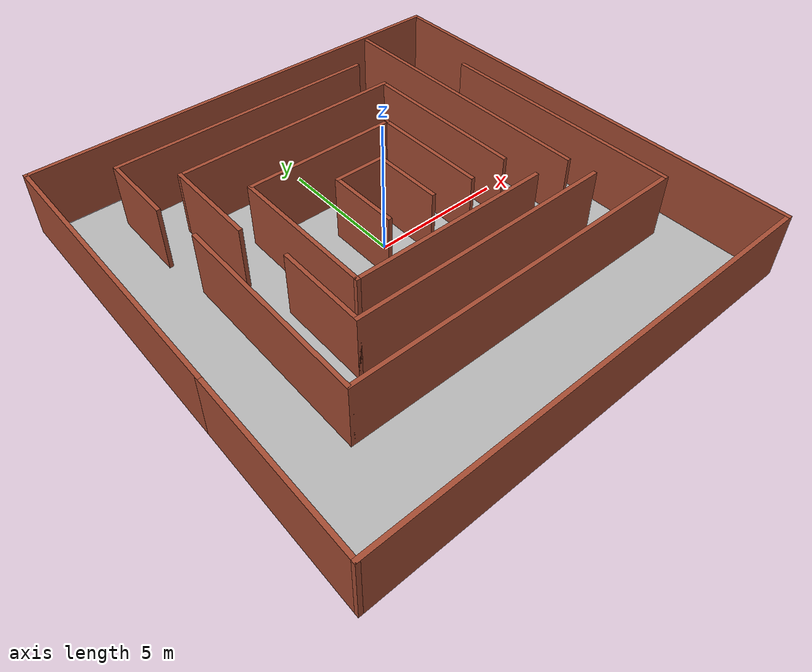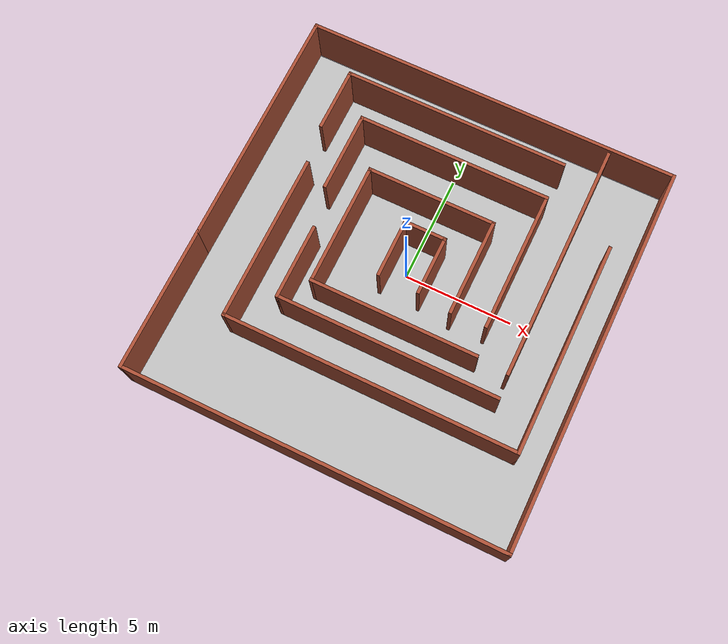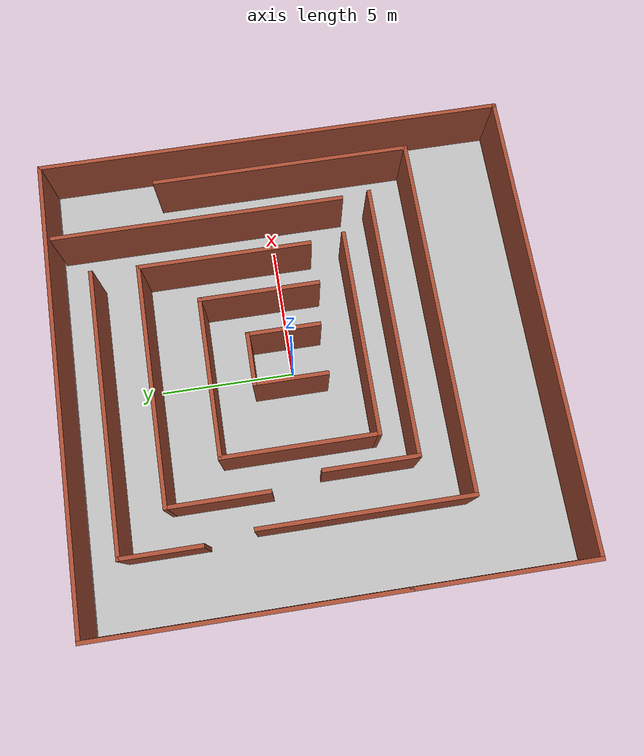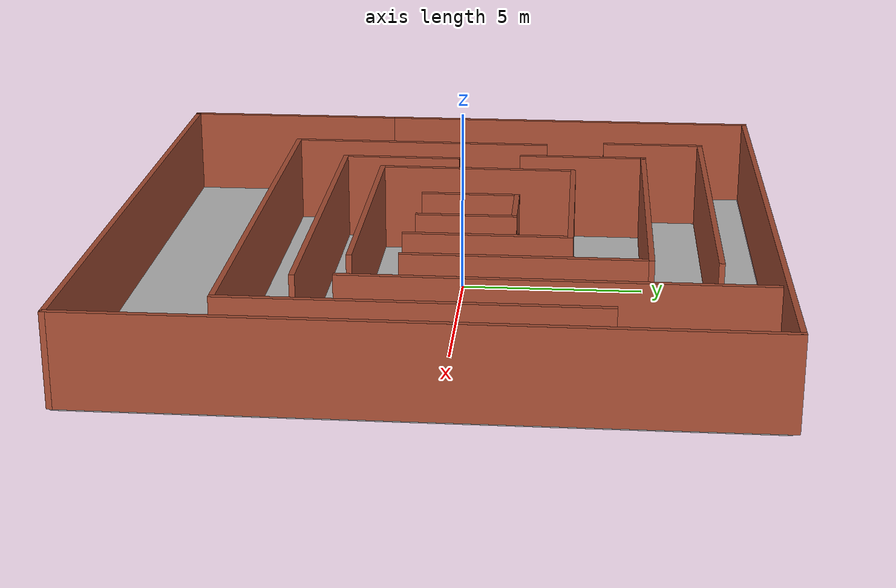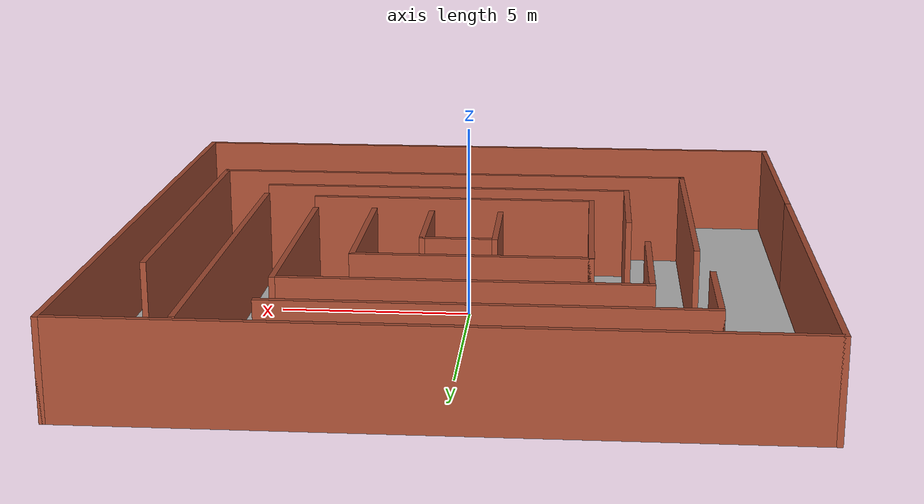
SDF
<sdf version="1.6">
 <world name="default">
  <light name="sun" type="directional">
   <pose>0 0 10 0 -0 0</pose>
   <diffuse>0.8 0.8 0.8 1</diffuse>
   <specular>0.1 0.1 0.1 1</specular>
   <attenuation>
    <range>1000</range>
    <constant>0.9</constant>
    <linear>0.01</linear>
    <quadratic>0.001</quadratic>
   </attenuation>
   <direction>-0.5 0.5 -1</direction>
  </light>
  <gravity>0 0 -9.8</gravity>
  <magnetic_field>6e-06 2.3e-05 -4.2e-05</magnetic_field>
  <atmosphere type="adiabatic"/>
  <physics name="default_physics" default="0" type="ode">
   <max_step_size>0.001</max_step_size>
   <real_time_factor>1</real_time_factor>
   <real_time_update_rate>1000</real_time_update_rate>
  </physics>
  <scene><ambient>0.4 0.4 0.4 1</ambient><background>0.7 0.7 0.7 1</background><shadows>1</shadows></scene>
  <spherical_coordinates>
   <surface_model>EARTH_WGS84</surface_model>
   <latitude_deg>0</latitude_deg>
   <longitude_deg>0</longitude_deg>
   <elevation>0</elevation>
   <heading_deg>0</heading_deg>
  </spherical_coordinates>
  <model name="grassplane">
   <pose>0.223223 -0.465823 0 0 -0 0</pose>
   <static>1</static>
   <link name="link">
    <collision name="collision">
     <geometry><plane><normal>0 0 1</normal><size>100 100</size></plane></geometry>
     <surface><friction><ode><mu>100</mu><mu2>50</mu2></ode></friction></surface>
    </collision>
    <visual name="visual">
     <geometry><mesh><uri>model://grassplane/meshes/grassplane.dae</uri><scale>1 1 1</scale></mesh></geometry>
    </visual>
   </link>
  </model>
  <model name="course_walls_1_0">
   <pose>0.15744 -0.43786 0 0 -0 0</pose>
   <link name="Wall_2">
    <collision name="Wall_2_Collision">
     <geometry><box><size>11.25 0.15 2.5</size></box></geometry>
     <pose>0 0 1.25 0 -0 0</pose>
    </collision>
    <visual name="Wall_2_Visual">
     <pose>0 0 1.25 0 -0 0</pose>
     <geometry><box><size>11.25 0.15 2.5</size></box></geometry>
     <material>
      <script><uri>file://media/materials/scripts/gazebo.material</uri><name>Gazebo/Bricks</name></script>
      <ambient>1 1 1 1</ambient>
     </material>
    </visual>
    <pose>-8.675 3.25 0 0 -0 1.5708</pose>
   </link>
   <link name="Wall_3">
    <collision name="Wall_3_Collision">
     <geometry><box><size>17.5 0.15 2.5</size></box></geometry>
     <pose>0 0 1.25 0 -0 0</pose>
    </collision>
    <visual name="Wall_3_Visual">
     <pose>0 0 1.25 0 -0 0</pose>
     <geometry><box><size>17.5 0.15 2.5</size></box></geometry>
     <material>
      <script><uri>file://media/materials/scripts/gazebo.material</uri><name>Gazebo/Bricks</name></script>
      <ambient>1 1 1 1</ambient>
     </material>
    </visual>
    <pose>0 8.8 0 0 -0 0</pose>
   </link>
   <link name="Wall_4">
    <collision name="Wall_4_Collision">
     <geometry><box><size>17.75 0.15 2.5</size></box></geometry>
     <pose>0 0 1.25 0 -0 0</pose>
    </collision>
    <visual name="Wall_4_Visual">
     <pose>0 0 1.25 0 -0 0</pose>
     <geometry><box><size>17.75 0.15 2.5</size></box></geometry>
     <material>
      <script><uri>file://media/materials/scripts/gazebo.material</uri><name>Gazebo/Bricks</name></script>
      <ambient>1 1 1 1</ambient>
     </material>
    </visual>
    <pose>8.675 0 0 0 0 -1.5708</pose>
   </link>
   <link name="Wall_5">
    <collision name="Wall_5_Collision">
     <geometry><box><size>17.5 0.15 2.5</size></box></geometry>
     <pose>0 0 1.25 0 -0 0</pose>
    </collision>
    <visual name="Wall_5_Visual">
     <pose>0 0 1.25 0 -0 0</pose>
     <geometry><box><size>17.5 0.15 2.5</size></box></geometry>
     <material>
      <script><uri>file://media/materials/scripts/gazebo.material</uri><name>Gazebo/Bricks</name></script>
      <ambient>1 1 1 1</ambient>
     </material>
    </visual>
    <pose>0 -8.8 0 0 -0 3.14159</pose>
   </link>
   <link name="Wall_6">
    <collision name="Wall_6_Collision">
     <geometry><box><size>6.65 0.15 2.5</size></box></geometry>
     <pose>0 0 1.25 0 -0 0</pose>
    </collision>
    <visual name="Wall_6_Visual">
     <pose>0 0 1.25 0 -0 0</pose>
     <geometry><box><size>6.65 0.15 2.5</size></box></geometry>
     <material>
      <script><uri>file://media/materials/scripts/gazebo.material</uri><name>Gazebo/Bricks</name></script>
      <ambient>1 1 1 1</ambient>
     </material>
    </visual>
    <pose>-8.675 -5.55 0 0 -0 1.5708</pose>
   </link>
   <static>1</static>
  </model>
  <model name="maze_jackal">
   <pose>0.76615 1.30845 0 0 -0 0</pose>
   <link name="Wall_11">
    <collision name="Wall_11_Collision">
     <geometry><box><size>6.5 0.15 2.5</size></box></geometry>
     <pose>0 0 1.25 0 -0 0</pose>
    </collision>
    <visual name="Wall_11_Visual">
     <pose>0 0 1.25 0 -0 0</pose>
     <geometry><box><size>6.5 0.15 2.5</size></box></geometry>
     <material>
      <script><uri>file://media/materials/scripts/gazebo.material</uri><name>Gazebo/Bricks</name></script>
      <ambient>1 1 1 1</ambient>
     </material>
    </visual>
    <pose>3.49516 0.589175 0 0 -0 1.5708</pose>
   </link>
   <link name="Wall_12">
    <collision name="Wall_12_Collision">
     <geometry><box><size>9 0.15 2.5</size></box></geometry>
     <pose>0 0 1.25 0 -0 0</pose>
    </collision>
    <visual name="Wall_12_Visual">
     <pose>0 0 1.25 0 -0 0</pose>
     <geometry><box><size>9 0.15 2.5</size></box></geometry>
     <material>
      <script><uri>file://media/materials/scripts/gazebo.material</uri><name>Gazebo/Bricks</name></script>
      <ambient>1 1 1 1</ambient>
     </material>
    </visual>
    <pose>-0.929843 3.76417 0 0 -0 3.14159</pose>
   </link>
   <link name="Wall_13">
    <collision name="Wall_13_Collision">
     <geometry><box><size>3.75 0.15 2.5</size></box></geometry>
     <pose>0 0 1.25 0 -0 0</pose>
    </collision>
    <visual name="Wall_13_Visual">
     <pose>0 0 1.25 0 -0 0</pose>
     <geometry><box><size>3.75 0.15 2.5</size></box></geometry>
     <material>
      <script><uri>file://media/materials/scripts/gazebo.material</uri><name>Gazebo/Bricks</name></script>
      <ambient>1 1 1 1</ambient>
     </material>
    </visual>
    <pose>-5.35484 1.96418 0 0 0 -1.5708</pose>
   </link>
   <link name="Wall_15">
    <collision name="Wall_15_Collision">
     <geometry><box><size>3.5 0.15 2.5</size></box></geometry>
     <pose>0 0 1.25 0 -0 0</pose>
    </collision>
    <visual name="Wall_15_Visual">
     <pose>0 0 1.25 0 -0 0</pose>
     <geometry><box><size>3.5 0.15 2.5</size></box></geometry>
     <material>
      <script><uri>file://media/materials/scripts/gazebo.material</uri><name>Gazebo/Bricks</name></script>
      <ambient>1 1 1 1</ambient>
     </material>
    </visual>
    <pose>-4.9196 -3.45171 0 0 0 -1.5708</pose>
   </link>
   <link name="Wall_16">
    <collision name="Wall_16_Collision">
     <geometry><box><size>10.25 0.15 2.5</size></box></geometry>
     <pose>0 0 1.25 0 -0 0</pose>
    </collision>
    <visual name="Wall_16_Visual">
     <pose>0 0 1.25 0 -0 0</pose>
     <geometry><box><size>10.25 0.15 2.5</size></box></geometry>
     <material>
      <script><uri>file://media/materials/scripts/gazebo.material</uri><name>Gazebo/Bricks</name></script>
      <ambient>1 1 1 1</ambient>
     </material>
    </visual>
    <pose>0.130397 -5.12671 0 0 -0 0</pose>
   </link>
   <link name="Wall_18">
    <collision name="Wall_18_Collision">
     <geometry><box><size>11 0.15 2.5</size></box></geometry>
     <pose>0 0 1.25 0 -0 0</pose>
    </collision>
    <visual name="Wall_18_Visual">
     <pose>0 0 1.25 0 -0 0</pose>
     <geometry><box><size>11 0.15 2.5</size></box></geometry>
     <material>
      <script><uri>file://media/materials/scripts/gazebo.material</uri><name>Gazebo/Bricks</name></script>
      <ambient>1 1 1 1</ambient>
     </material>
    </visual>
    <pose>5.11338 1.38277 0 0 -0 1.5708</pose>
   </link>
   <link name="Wall_2">
    <collision name="Wall_2_Collision">
     <geometry><box><size>2.75 0.15 2.5</size></box></geometry>
     <pose>0 0 1.25 0 -0 0</pose>
    </collision>
    <visual name="Wall_2_Visual">
     <pose>0 0 1.25 0 -0 0</pose>
     <geometry><box><size>2.75 0.15 2.5</size></box></geometry>
     <material>
      <script><uri>file://media/materials/scripts/gazebo.material</uri><name>Gazebo/Bricks</name></script>
      <ambient>1 1 1 1</ambient>
     </material>
    </visual>
    <pose>-1.51615 -1.14846 0 0 -0 1.5708</pose>
   </link>
   <link name="Wall_20">
    <collision name="Wall_20_Collision">
     <geometry><box><size>7.75 0.15 2.5</size></box></geometry>
     <pose>0 0 1.25 0 -0 0</pose>
    </collision>
    <visual name="Wall_20_Visual">
     <pose>0 0 1.25 0 -0 0</pose>
     <geometry><box><size>7.75 0.15 2.5</size></box></geometry>
     <material>
      <script><uri>file://media/materials/scripts/gazebo.material</uri><name>Gazebo/Bricks</name></script>
      <ambient>1 1 1 1</ambient>
     </material>
    </visual>
    <pose>-6.54124 -3.00777 0 0 0 -1.5708</pose>
   </link>
   <link name="Wall_21">
    <collision name="Wall_21_Collision">
     <geometry><box><size>13.5 0.15 2.5</size></box></geometry>
     <pose>0 0 1.25 0 -0 0</pose>
    </collision>
    <visual name="Wall_21_Visual">
     <pose>0 0 1.25 0 -0 0</pose>
     <geometry><box><size>13.5 0.15 2.5</size></box></geometry>
     <material>
      <script><uri>file://media/materials/scripts/gazebo.material</uri><name>Gazebo/Bricks</name></script>
      <ambient>1 1 1 1</ambient>
     </material>
    </visual>
    <pose>0.133756 -6.80777 0 0 -0 0</pose>
   </link>
   <link name="Wall_22">
    <collision name="Wall_22_Collision">
     <geometry><box><size>9.75 0.15 2.5</size></box></geometry>
     <pose>0 0 1.25 0 -0 0</pose>
    </collision>
    <visual name="Wall_22_Visual">
     <pose>0 0 1.25 0 -0 0</pose>
     <geometry><box><size>9.75 0.15 2.5</size></box></geometry>
     <material>
      <script><uri>file://media/materials/scripts/gazebo.material</uri><name>Gazebo/Bricks</name></script>
      <ambient>1 1 1 1</ambient>
     </material>
    </visual>
    <pose>6.80876 -2.00777 0 0 -0 1.5708</pose>
   </link>
   <link name="Wall_24">
    <collision name="Wall_24_Collision">
     <geometry><box><size>3 0.15 2.5</size></box></geometry>
     <pose>0 0 1.25 0 -0 0</pose>
    </collision>
    <visual name="Wall_24_Visual">
     <pose>0 0 1.25 0 -0 0</pose>
     <geometry><box><size>3 0.15 2.5</size></box></geometry>
     <material>
      <script><uri>file://media/materials/scripts/gazebo.material</uri><name>Gazebo/Bricks</name></script>
      <ambient>1 1 1 1</ambient>
     </material>
    </visual>
    <pose>-6.80876 4.08981 0 0 -0 1.5708</pose>
   </link>
   <link name="Wall_25">
    <collision name="Wall_25_Collision">
     <geometry><box><size>10.5 0.15 2.5</size></box></geometry>
     <pose>0 0 1.25 0 -0 0</pose>
    </collision>
    <visual name="Wall_25_Visual">
     <pose>0 0 1.25 0 -0 0</pose>
     <geometry><box><size>10.5 0.15 2.5</size></box></geometry>
     <material>
      <script><uri>file://media/materials/scripts/gazebo.material</uri><name>Gazebo/Bricks</name></script>
      <ambient>1 1 1 1</ambient>
     </material>
    </visual>
    <pose>-1.63376 5.51481 0 0 -0 0</pose>
   </link>
   <link name="Wall_3">
    <collision name="Wall_3_Collision">
     <geometry><box><size>2 0.15 2.5</size></box></geometry>
     <pose>0 0 1.25 0 -0 0</pose>
    </collision>
    <visual name="Wall_3_Visual">
     <pose>0 0 1.25 0 -0 0</pose>
     <geometry><box><size>2 0.15 2.5</size></box></geometry>
     <material>
      <script><uri>file://media/materials/scripts/gazebo.material</uri><name>Gazebo/Bricks</name></script>
      <ambient>1 1 1 1</ambient>
     </material>
    </visual>
    <pose>-0.591151 0.151537 0 0 -0 0</pose>
   </link>
   <link name="Wall_4">
    <collision name="Wall_4_Collision">
     <geometry><box><size>2.75 0.15 2.5</size></box></geometry>
     <pose>0 0 1.25 0 -0 0</pose>
    </collision>
    <visual name="Wall_4_Visual">
     <pose>0 0 1.25 0 -0 0</pose>
     <geometry><box><size>2.75 0.15 2.5</size></box></geometry>
     <material>
      <script><uri>file://media/materials/scripts/gazebo.material</uri><name>Gazebo/Bricks</name></script>
      <ambient>1 1 1 1</ambient>
     </material>
    </visual>
    <pose>0.333849 -1.14846 0 0 0 -1.5708</pose>
   </link>
   <link name="Wall_6">
    <collision name="Wall_6_Collision">
     <geometry><box><size>7.75 0.15 2.5</size></box></geometry>
     <pose>0 0 1.25 0 -0 0</pose>
    </collision>
    <visual name="Wall_6_Visual">
     <pose>0 0 1.25 0 -0 0</pose>
     <geometry><box><size>7.75 0.15 2.5</size></box></geometry>
     <material>
      <script><uri>file://media/materials/scripts/gazebo.material</uri><name>Gazebo/Bricks</name></script>
      <ambient>1 1 1 1</ambient>
     </material>
    </visual>
    <pose>-0.147169 -3.90522 0 0 -0 3.14159</pose>
   </link>
   <link name="Wall_7">
    <collision name="Wall_7_Collision">
     <geometry><box><size>5.75 0.15 2.5</size></box></geometry>
     <pose>0 0 1.25 0 -0 0</pose>
    </collision>
    <visual name="Wall_7_Visual">
     <pose>0 0 1.25 0 -0 0</pose>
     <geometry><box><size>5.75 0.15 2.5</size></box></geometry>
     <material>
      <script><uri>file://media/materials/scripts/gazebo.material</uri><name>Gazebo/Bricks</name></script>
      <ambient>1 1 1 1</ambient>
     </material>
    </visual>
    <pose>-3.94717 -1.10522 0 0 -0 1.5708</pose>
   </link>
   <link name="Wall_8">
    <collision name="Wall_8_Collision">
     <geometry><box><size>6 0.15 2.5</size></box></geometry>
     <pose>0 0 1.25 0 -0 0</pose>
    </collision>
    <visual name="Wall_8_Visual">
     <pose>0 0 1.25 0 -0 0</pose>
     <geometry><box><size>6 0.15 2.5</size></box></geometry>
     <material>
      <script><uri>file://media/materials/scripts/gazebo.material</uri><name>Gazebo/Bricks</name></script>
      <ambient>1 1 1 1</ambient>
     </material>
    </visual>
    <pose>-1.02217 1.69478 0 0 -0 0</pose>
   </link>
   <link name="Wall_9">
    <collision name="Wall_9_Collision">
     <geometry><box><size>4.5 0.15 2.5</size></box></geometry>
     <pose>0 0 1.25 0 -0 0</pose>
    </collision>
    <visual name="Wall_9_Visual">
     <pose>0 0 1.25 0 -0 0</pose>
     <geometry><box><size>4.5 0.15 2.5</size></box></geometry>
     <material>
      <script><uri>file://media/materials/scripts/gazebo.material</uri><name>Gazebo/Bricks</name></script>
      <ambient>1 1 1 1</ambient>
     </material>
    </visual>
    <pose>1.90283 -0.480222 0 0 0 -1.5708</pose>
   </link>
   <static>1</static>
  </model>
 </world>
</sdf>
